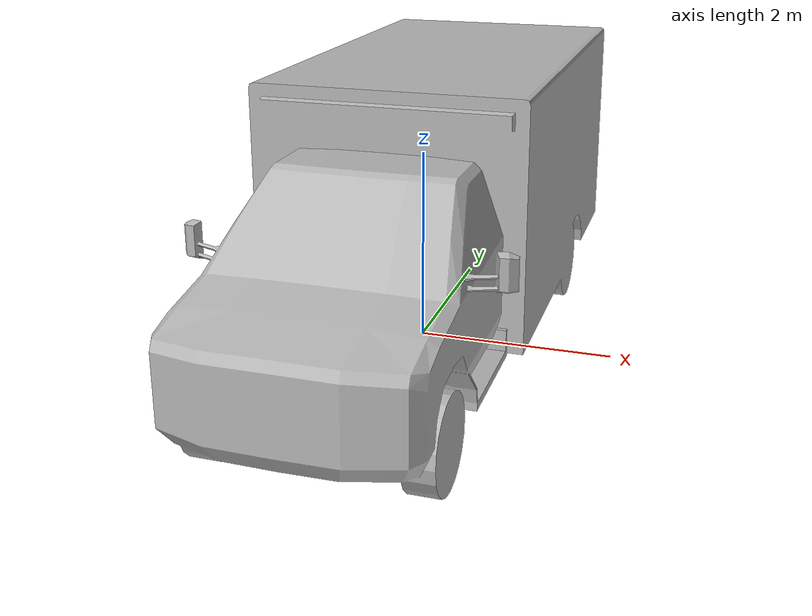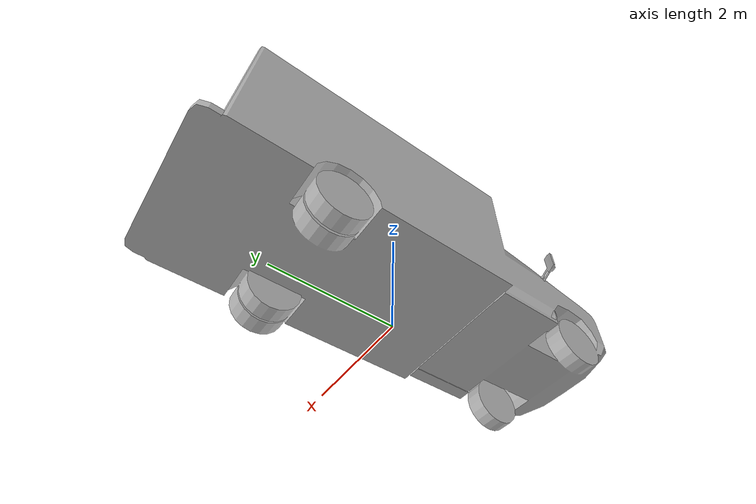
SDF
<?xml version="1.0" ?>
<sdf version="1.6">
  <model name="ambulance_tagged_3x">
    <static>true</static>
    <link name="link">
      <collision name="collision">
        <geometry>
          <mesh>
            <scale>0.0254 0.0254 0.0254</scale>
            <uri>model://ambulance_tagged_3x/meshes/ambulance_tagged_3x.obj</uri>
          </mesh>
        </geometry>
      </collision>
      <visual name="visual">
        <geometry>
          <mesh>
            <scale>0.0254 0.0254 0.0254</scale>
            <uri>model://ambulance_tagged_3x/meshes/ambulance_tagged_3x.obj</uri>
          </mesh>
        </geometry>
      </visual>
    </link>
  </model>
</sdf>
